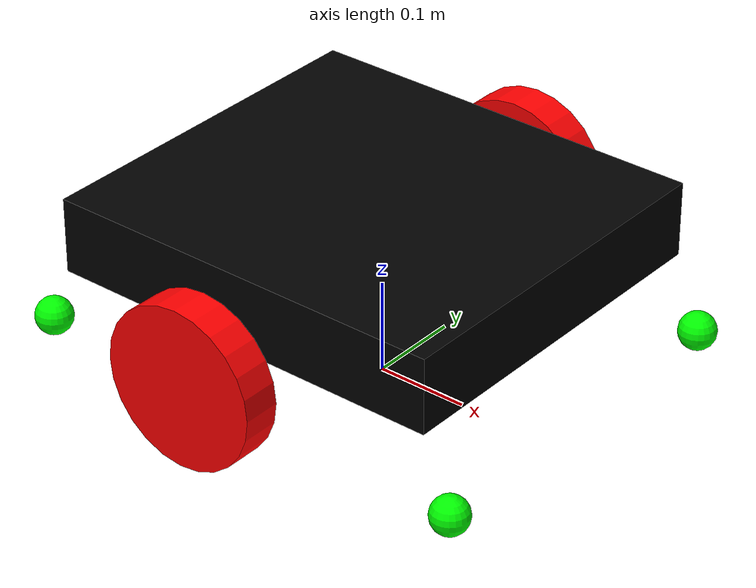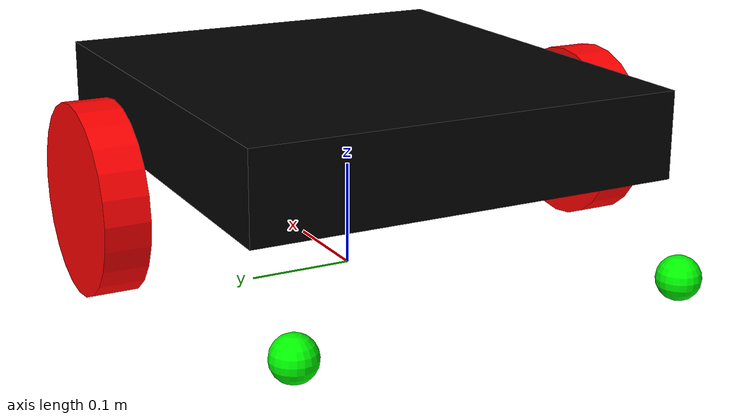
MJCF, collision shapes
<mujoco model="tracer2">
  <compiler meshdir="assets" angle="radian" autolimits="true"/>

  <default>
    <default class="visual">
      <geom type="mesh" contype="0" conaffinity="0" group="2" material="gray"/>
    </default>
    <default class="collision">
      <geom group="1" friction="3.0 0.005 0.0001"/>
      <default class="wheel">
        <geom
          type="cylinder"
          size="0.085 0.02"
          condim="4"
          friction="4.0 0.02 0.0001"
        />
      </default>
      <default class="caster">
        <geom
          type="sphere"
          size="0.02"
          friction="0.003 0.0005 0.00005"
          solimp="0.75 0.92 0.001"
          solref="0.03 1"
        />
      </default>
    </default>
  </default>

  <asset>
    <material name="gray" rgba="0.7 0.7 0.7 1"/>
    <material name="dark" rgba="0.2 0.2 0.2 1"/>

    <mesh name="base_link" file="base_link.STL"/>
    <mesh name="right_link" file="right_link.STL"/>
    <mesh name="left_Link" file="left_Link.STL"/>
    <mesh name="right_front_link" file="right_front_link.STL"/>
    <mesh name="right_rear_link" file="right_rear_link.STL"/>
    <mesh name="left_front_link" file="left_front_link.STL"/>
    <mesh name="left_rear_link" file="left_rear_link.STL"/>
  </asset>

  <worldbody>
    <body name="base_link" pos="0 0 0.2">
      <freejoint/>
      <inertial pos="-0.018 0 -0.04" mass="24" diaginertia="0.8 0.6 0.9"/>
      <geom mesh="base_link" class="visual" material="dark"/>
      <geom name="chassis_collision" type="box" pos="-0.01 0 -0.04" size="0.22 0.20 0.04" group="1" friction="1.5 0.02 0.0005" rgba="0 0 0 0"/>
      <geom mesh="base_link" type="mesh" group="1" contype="0" conaffinity="0"/>

      <!-- Drive Wheels (The primary contact points) -->
      <body name="right_link" pos="-0.018818 -0.2537 -0.0905" quat="0.7071068 -0.7071068 0 0">
        <joint name="right_joint" axis="0 0 1" damping="0.2" armature="0.02"/>
        <geom mesh="right_link" class="visual"/>
        <geom class="wheel" rgba="1 0 0 0"/>
      </body>
      <body name="left_link" pos="-0.018818 0.2537 -0.0905" quat="0.7071068 0.7071068 0 0">
        <joint name="left_joint" axis="0 0 1" damping="0.2" armature="0.02"/>
        <geom mesh="left_Link" class="visual"/>
        <geom class="wheel" rgba="1 0 0 0"/>
      </body>

      <!-- Casters: same nominal contact plane as drive wheels, but vertically compliant -->
      <body name="right_front_link" pos="0.23918 -0.1977 -0.1555">
        <inertial pos="0 0 0" mass="0.05" diaginertia="0.00002 0.00002 0.00002"/>
        <joint name="right_front_slide" type="slide" axis="0 0 1" range="0 0.01" stiffness="1500" damping="80"/>
        <geom mesh="right_front_link" pos="0 0 0.0965" quat="0 1 0 0" class="visual"/>
        <geom class="caster" rgba="0 1 0 0"/>
      </body>
      <body name="right_rear_link" pos="-0.27082 -0.183 -0.1555">
        <inertial pos="0 0 0" mass="0.05" diaginertia="0.00002 0.00002 0.00002"/>
        <joint name="right_rear_slide" type="slide" axis="0 0 1" range="0 0.01" stiffness="1500" damping="80"/>
        <geom mesh="right_rear_link" pos="0 0 0.0965" quat="0 1 0 0" class="visual"/>
        <geom class="caster" rgba="0 1 0 0"/>
      </body>
      <body name="left_front_link" pos="0.23918 0.1977 -0.1555">
        <inertial pos="0 0 0" mass="0.05" diaginertia="0.00002 0.00002 0.00002"/>
        <joint name="left_front_slide" type="slide" axis="0 0 1" range="0 0.01" stiffness="1500" damping="80"/>
        <geom mesh="left_front_link" pos="0 0 0.0965" class="visual"/>
        <geom class="caster" rgba="0 1 0 0"/>
      </body>
      <body name="left_rear_link" pos="-0.27077 0.18305 -0.1555">
        <inertial pos="0 0 0" mass="0.05" diaginertia="0.00002 0.00002 0.00002"/>
        <joint name="left_rear_slide" type="slide" axis="0 0 1" range="0 0.01" stiffness="1500" damping="80"/>
        <geom mesh="left_rear_link" pos="0 0 0.0965" class="visual"/>
        <geom class="caster" rgba="0 1 0 0"/>
      </body>
    </body>
  </worldbody>

  <actuator>
    <velocity name="right_drive" joint="right_joint" kv="55" ctrlrange="-18 18"/>
    <velocity name="left_drive" joint="left_joint" kv="55" ctrlrange="-18 18"/>
  </actuator>
</mujoco>
